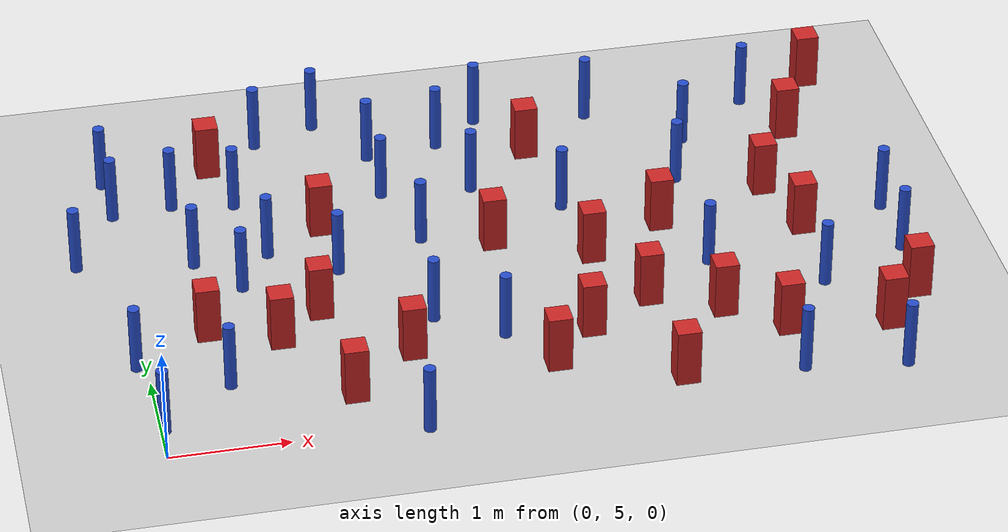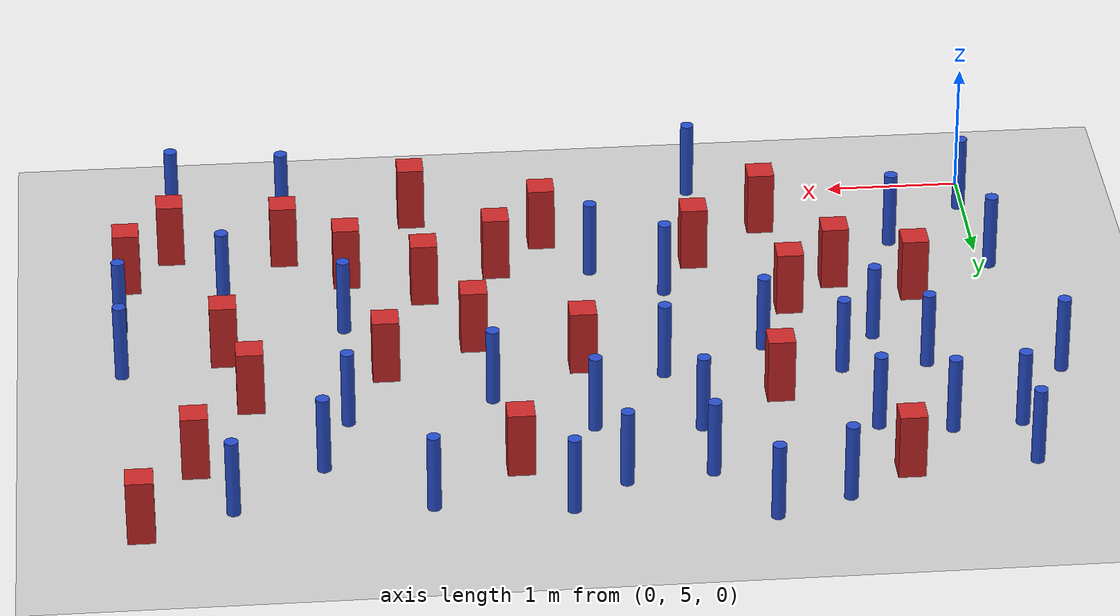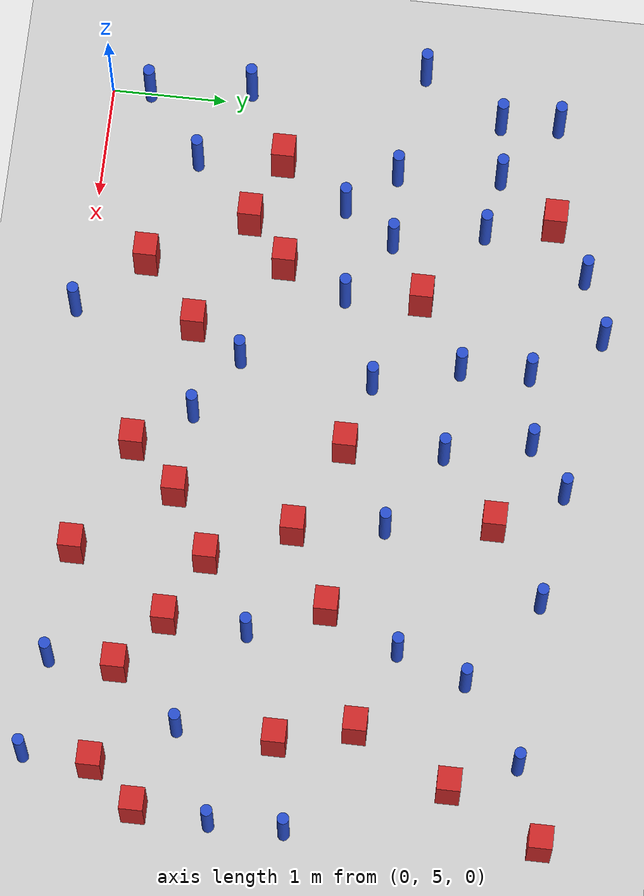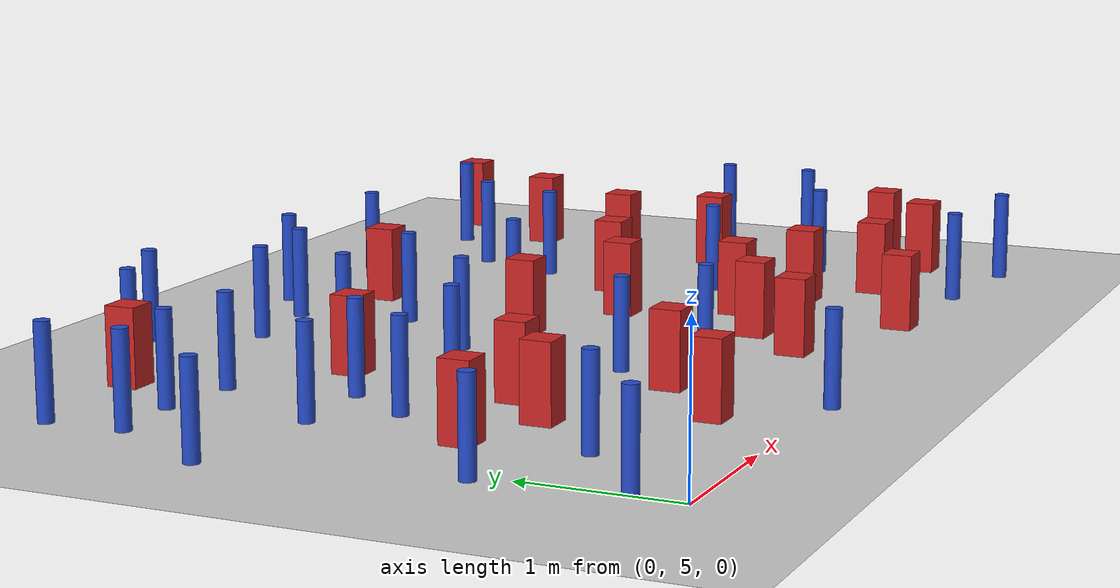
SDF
<sdf version="1.6">
 <world name="default">
  <model name="ground_plane">
   <static>1</static>
   <link name="link">
    <collision name="collision">
     <geometry><plane><normal>0 0 1</normal><size>100 100</size></plane></geometry>
     <surface><friction><ode><mu>100</mu><mu2>50</mu2></ode></friction></surface>
    </collision>
    <visual name="visual">
     <cast_shadows>0</cast_shadows>
     <geometry><plane><normal>0 0 1</normal><size>100 100</size></plane></geometry>
     <material>
      <ambient>1.0 1.0 1.0 1.0</ambient>
      <diffuse>0.8 0.8 0.8 1.0</diffuse>
      <specular>0.01 0.01 0.01 1.000000</specular>
     </material>
    </visual>
   </link>
  </model>
  <model name="pole_obstacle3">
   <static>true</static>
   <pose>5.07343041441 8.62092034777 2.88873142074e-08 -9.9053668967e-09 4.60219948993e-07 -1.20965994957e-07</pose>
   <link name="link">
    <pose>0 0 0.3 0 -0 0</pose>
    <inertial>
     <mass>1</mass>
     <inertia><ixx>0.145833</ixx><ixy>0</ixy><ixz>0</ixz><iyy>0.145833</iyy><iyz>0</iyz><izz>0.125</izz></inertia>
    </inertial>
    <collision name="collision">
     <geometry><cylinder><radius>0.05</radius><length>.6</length></cylinder></geometry>
    </collision>
    <visual name="visual">
     <geometry><cylinder><radius>0.05</radius><length>.6</length></cylinder></geometry>
     <material>
      <script><name>Gazebo/Blue</name><uri>file://media/materials/scripts/gazebo.material</uri></script>
     </material>
    </visual>
   </link>
  </model>
  <model name="square_post_obstacle4">
   <static>true</static>
   <pose>3.6613418634 6.00296689064 8.22691968438e-08 7.2212513382e-06 -7.54495500217e-07 2.29674213826e-05</pose>
   <link name="link">
    <pose>0 0 0.25 0 -0 0</pose>
    <inertial>
     <mass>100</mass>
     <inertia>
      <ixx>0.166667</ixx>
      <ixy>0</ixy>
      <ixz>0</ixz>
      <iyy>0.166667</iyy>
      <iyz>0</iyz>
      <izz>0.166667</izz>
     </inertia>
    </inertial>
    <collision name="collision"><geometry><box><size>.2 .2 .5</size></box></geometry></collision>
    <visual name="visual">
     <geometry><box><size>.2 .2 .5</size></box></geometry>
     <material>
      <script><name>Gazebo/Red</name><uri>file://media/materials/scripts/gazebo.material</uri></script>
     </material>
    </visual>
   </link>
  </model>
  <model name="pole_obstacle5">
   <static>true</static>
   <pose>-0.0787038739394 6.22609958677 2.88873142074e-08 -9.90536689804e-09 4.6021994899e-07 -1.2096599496e-07</pose>
   <link name="link">
    <pose>0 0 0.3 0 -0 0</pose>
    <inertial>
     <mass>1</mass>
     <inertia><ixx>0.145833</ixx><ixy>0</ixy><ixz>0</ixz><iyy>0.145833</iyy><iyz>0</iyz><izz>0.125</izz></inertia>
    </inertial>
    <collision name="collision">
     <geometry><cylinder><radius>0.05</radius><length>.6</length></cylinder></geometry>
    </collision>
    <visual name="visual">
     <geometry><cylinder><radius>0.05</radius><length>.6</length></cylinder></geometry>
     <material>
      <script><name>Gazebo/Blue</name><uri>file://media/materials/scripts/gazebo.material</uri></script>
     </material>
    </visual>
   </link>
  </model>
  <model name="square_post_obstacle8">
   <static>true</static>
   <pose>4.79156182953 6.05507499224 8.22691968438e-08 7.2212513382e-06 -7.54495500217e-07 2.29674213826e-05</pose>
   <link name="link">
    <pose>0 0 0.25 0 -0 0</pose>
    <inertial>
     <mass>100</mass>
     <inertia>
      <ixx>0.166667</ixx>
      <ixy>0</ixy>
      <ixz>0</ixz>
      <iyy>0.166667</iyy>
      <iyz>0</iyz>
      <izz>0.166667</izz>
     </inertia>
    </inertial>
    <collision name="collision"><geometry><box><size>.2 .2 .5</size></box></geometry></collision>
    <visual name="visual">
     <geometry><box><size>.2 .2 .5</size></box></geometry>
     <material>
      <script><name>Gazebo/Red</name><uri>file://media/materials/scripts/gazebo.material</uri></script>
     </material>
    </visual>
   </link>
  </model>
  <model name="pole_obstacle8">
   <static>true</static>
   <pose>0.0293933119848 5.34193619767 2.88873142074e-08 -9.90536689629e-09 4.60219948994e-07 -1.20965994958e-07</pose>
   <link name="link">
    <pose>0 0 0.3 0 -0 0</pose>
    <inertial>
     <mass>1</mass>
     <inertia><ixx>0.145833</ixx><ixy>0</ixy><ixz>0</ixz><iyy>0.145833</iyy><iyz>0</iyz><izz>0.125</izz></inertia>
    </inertial>
    <collision name="collision">
     <geometry><cylinder><radius>0.05</radius><length>.6</length></cylinder></geometry>
    </collision>
    <visual name="visual">
     <geometry><cylinder><radius>0.05</radius><length>.6</length></cylinder></geometry>
     <material>
      <script><name>Gazebo/Blue</name><uri>file://media/materials/scripts/gazebo.material</uri></script>
     </material>
    </visual>
   </link>
  </model>
  <model name="square_post_obstacle21">
   <static>true</static>
   <pose>3.28651102273 5.59727362077 8.22691968438e-08 7.2212513382e-06 -7.54495500217e-07 2.29674213826e-05</pose>
   <link name="link">
    <pose>0 0 0.25 0 -0 0</pose>
    <inertial>
     <mass>100</mass>
     <inertia>
      <ixx>0.166667</ixx>
      <ixy>0</ixy>
      <ixz>0</ixz>
      <iyy>0.166667</iyy>
      <iyz>0</iyz>
      <izz>0.166667</izz>
     </inertia>
    </inertial>
    <collision name="collision"><geometry><box><size>.2 .2 .5</size></box></geometry></collision>
    <visual name="visual">
     <geometry><box><size>.2 .2 .5</size></box></geometry>
     <material>
      <script><name>Gazebo/Red</name><uri>file://media/materials/scripts/gazebo.material</uri></script>
     </material>
    </visual>
   </link>
  </model>
  <model name="pole_obstacle13">
   <static>true</static>
   <pose>-0.38946082477 7.73032005938 2.88873142074e-08 -9.90536689683e-09 4.60219948993e-07 -1.20965994957e-07</pose>
   <link name="link">
    <pose>0 0 0.3 0 -0 0</pose>
    <inertial>
     <mass>1</mass>
     <inertia><ixx>0.145833</ixx><ixy>0</ixy><ixz>0</ixz><iyy>0.145833</iyy><iyz>0</iyz><izz>0.125</izz></inertia>
    </inertial>
    <collision name="collision">
     <geometry><cylinder><radius>0.05</radius><length>.6</length></cylinder></geometry>
    </collision>
    <visual name="visual">
     <geometry><cylinder><radius>0.05</radius><length>.6</length></cylinder></geometry>
     <material>
      <script><name>Gazebo/Blue</name><uri>file://media/materials/scripts/gazebo.material</uri></script>
     </material>
    </visual>
   </link>
  </model>
  <model name="pole_obstacle17">
   <static>true</static>
   <pose>2.93207302947 8.97610273955 2.88873142074e-08 -9.90536692318e-09 4.6021994893e-07 -1.20965994988e-07</pose>
   <link name="link">
    <pose>0 0 0.3 0 -0 0</pose>
    <inertial>
     <mass>1</mass>
     <inertia><ixx>0.145833</ixx><ixy>0</ixy><ixz>0</ixz><iyy>0.145833</iyy><iyz>0</iyz><izz>0.125</izz></inertia>
    </inertial>
    <collision name="collision">
     <geometry><cylinder><radius>0.05</radius><length>.6</length></cylinder></geometry>
    </collision>
    <visual name="visual">
     <geometry><cylinder><radius>0.05</radius><length>.6</length></cylinder></geometry>
     <material>
      <script><name>Gazebo/Blue</name><uri>file://media/materials/scripts/gazebo.material</uri></script>
     </material>
    </visual>
   </link>
  </model>
  <model name="pole_obstacle20">
   <static>true</static>
   <pose>2.32133269156 8.30454844125 2.88873142074e-08 -9.90536692318e-09 4.6021994893e-07 -1.20965994988e-07</pose>
   <link name="link">
    <pose>0 0 0.3 0 -0 0</pose>
    <inertial>
     <mass>1</mass>
     <inertia><ixx>0.145833</ixx><ixy>0</ixy><ixz>0</ixz><iyy>0.145833</iyy><iyz>0</iyz><izz>0.125</izz></inertia>
    </inertial>
    <collision name="collision">
     <geometry><cylinder><radius>0.05</radius><length>.6</length></cylinder></geometry>
    </collision>
    <visual name="visual">
     <geometry><cylinder><radius>0.05</radius><length>.6</length></cylinder></geometry>
     <material>
      <script><name>Gazebo/Blue</name><uri>file://media/materials/scripts/gazebo.material</uri></script>
     </material>
    </visual>
   </link>
  </model>
  <model name="pole_obstacle22">
   <static>true</static>
   <pose>4.31990303642 9.18147303217 2.88873142074e-08 -9.9053668967e-09 4.60219948993e-07 -1.20965994957e-07</pose>
   <link name="link">
    <pose>0 0 0.3 0 -0 0</pose>
    <inertial>
     <mass>1</mass>
     <inertia><ixx>0.145833</ixx><ixy>0</ixy><ixz>0</ixz><iyy>0.145833</iyy><iyz>0</iyz><izz>0.125</izz></inertia>
    </inertial>
    <collision name="collision">
     <geometry><cylinder><radius>0.05</radius><length>.6</length></cylinder></geometry>
    </collision>
    <visual name="visual">
     <geometry><cylinder><radius>0.05</radius><length>.6</length></cylinder></geometry>
     <material>
      <script><name>Gazebo/Blue</name><uri>file://media/materials/scripts/gazebo.material</uri></script>
     </material>
    </visual>
   </link>
  </model>
  <model name="pole_obstacle23">
   <static>true</static>
   <pose>0.634908028483 5.83418528549 2.88873142074e-08 -9.90536689661e-09 4.60219948993e-07 -1.20965994957e-07</pose>
   <link name="link">
    <pose>0 0 0.3 0 -0 0</pose>
    <inertial>
     <mass>1</mass>
     <inertia><ixx>0.145833</ixx><ixy>0</ixy><ixz>0</ixz><iyy>0.145833</iyy><iyz>0</iyz><izz>0.125</izz></inertia>
    </inertial>
    <collision name="collision">
     <geometry><cylinder><radius>0.05</radius><length>.6</length></cylinder></geometry>
    </collision>
    <visual name="visual">
     <geometry><cylinder><radius>0.05</radius><length>.6</length></cylinder></geometry>
     <material>
      <script><name>Gazebo/Blue</name><uri>file://media/materials/scripts/gazebo.material</uri></script>
     </material>
    </visual>
   </link>
  </model>
  <model name="pole_obstacle29">
   <static>true</static>
   <pose>2.95133486048 6.07044219101 2.88873142074e-08 -9.90536689859e-09 4.60219948989e-07 -1.20965994961e-07</pose>
   <link name="link">
    <pose>0 0 0.3 0 -0 0</pose>
    <inertial>
     <mass>1</mass>
     <inertia><ixx>0.145833</ixx><ixy>0</ixy><ixz>0</ixz><iyy>0.145833</iyy><iyz>0</iyz><izz>0.125</izz></inertia>
    </inertial>
    <collision name="collision">
     <geometry><cylinder><radius>0.05</radius><length>.6</length></cylinder></geometry>
    </collision>
    <visual name="visual">
     <geometry><cylinder><radius>0.05</radius><length>.6</length></cylinder></geometry>
     <material>
      <script><name>Gazebo/Blue</name><uri>file://media/materials/scripts/gazebo.material</uri></script>
     </material>
    </visual>
   </link>
  </model>
  <model name="pole_obstacle32">
   <static>true</static>
   <pose>6.07850207997 5.01633205296 2.88873142074e-08 -9.90536690842e-09 4.60219948965e-07 -1.20965994976e-07</pose>
   <link name="link">
    <pose>0 0 0.3 0 -0 0</pose>
    <inertial>
     <mass>1</mass>
     <inertia><ixx>0.145833</ixx><ixy>0</ixy><ixz>0</ixz><iyy>0.145833</iyy><iyz>0</iyz><izz>0.125</izz></inertia>
    </inertial>
    <collision name="collision">
     <geometry><cylinder><radius>0.05</radius><length>.6</length></cylinder></geometry>
    </collision>
    <visual name="visual">
     <geometry><cylinder><radius>0.05</radius><length>.6</length></cylinder></geometry>
     <material>
      <script><name>Gazebo/Blue</name><uri>file://media/materials/scripts/gazebo.material</uri></script>
     </material>
    </visual>
   </link>
  </model>
  <model name="pole_obstacle34">
   <static>true</static>
   <pose>0.520382870995 8.47928747682 2.88873142074e-08 -9.90536690924e-09 4.60219948963e-07 -1.20965994977e-07</pose>
   <link name="link">
    <pose>0 0 0.3 0 -0 0</pose>
    <inertial>
     <mass>1</mass>
     <inertia><ixx>0.145833</ixx><ixy>0</ixy><ixz>0</ixz><iyy>0.145833</iyy><iyz>0</iyz><izz>0.125</izz></inertia>
    </inertial>
    <collision name="collision">
     <geometry><cylinder><radius>0.05</radius><length>.6</length></cylinder></geometry>
    </collision>
    <visual name="visual">
     <geometry><cylinder><radius>0.05</radius><length>.6</length></cylinder></geometry>
     <material>
      <script><name>Gazebo/Blue</name><uri>file://media/materials/scripts/gazebo.material</uri></script>
     </material>
    </visual>
   </link>
  </model>
  <model name="pole_obstacle38">
   <static>true</static>
   <pose>1.36832359523 9.29233641756 2.88873142074e-08 -9.90536690474e-09 4.60219948974e-07 -1.2096599497e-07</pose>
   <link name="link">
    <pose>0 0 0.3 0 -0 0</pose>
    <inertial>
     <mass>1</mass>
     <inertia><ixx>0.145833</ixx><ixy>0</ixy><ixz>0</ixz><iyy>0.145833</iyy><iyz>0</iyz><izz>0.125</izz></inertia>
    </inertial>
    <collision name="collision">
     <geometry><cylinder><radius>0.05</radius><length>.6</length></cylinder></geometry>
    </collision>
    <visual name="visual">
     <geometry><cylinder><radius>0.05</radius><length>.6</length></cylinder></geometry>
     <material>
      <script><name>Gazebo/Blue</name><uri>file://media/materials/scripts/gazebo.material</uri></script>
     </material>
    </visual>
   </link>
  </model>
  <model name="pole_obstacle39">
   <static>true</static>
   <pose>4.87106118385 8.02638013836 2.88873142074e-08 -9.90536690354e-09 4.60219948977e-07 -1.20965994967e-07</pose>
   <link name="link">
    <pose>0 0 0.3 0 -0 0</pose>
    <inertial>
     <mass>1</mass>
     <inertia><ixx>0.145833</ixx><ixy>0</ixy><ixz>0</ixz><iyy>0.145833</iyy><iyz>0</iyz><izz>0.125</izz></inertia>
    </inertial>
    <collision name="collision">
     <geometry><cylinder><radius>0.05</radius><length>.6</length></cylinder></geometry>
    </collision>
    <visual name="visual">
     <geometry><cylinder><radius>0.05</radius><length>.6</length></cylinder></geometry>
     <material>
      <script><name>Gazebo/Blue</name><uri>file://media/materials/scripts/gazebo.material</uri></script>
     </material>
    </visual>
   </link>
  </model>
  <model name="pole_obstacle42">
   <static>true</static>
   <pose>4.84214449303 6.7519279477 2.88873142074e-08 -9.90536690842e-09 4.60219948965e-07 -1.20965994976e-07</pose>
   <link name="link">
    <pose>0 0 0.3 0 -0 0</pose>
    <inertial>
     <mass>1</mass>
     <inertia><ixx>0.145833</ixx><ixy>0</ixy><ixz>0</ixz><iyy>0.145833</iyy><iyz>0</iyz><izz>0.125</izz></inertia>
    </inertial>
    <collision name="collision">
     <geometry><cylinder><radius>0.05</radius><length>.6</length></cylinder></geometry>
    </collision>
    <visual name="visual">
     <geometry><cylinder><radius>0.05</radius><length>.6</length></cylinder></geometry>
     <material>
      <script><name>Gazebo/Blue</name><uri>file://media/materials/scripts/gazebo.material</uri></script>
     </material>
    </visual>
   </link>
  </model>
  <model name="square_post_obstacle42">
   <static>true</static>
   <pose>5.98952264554 8.56908962525 8.22691968438e-08 7.22125133819e-06 -7.54495500217e-07 2.29674213826e-05</pose>
   <link name="link">
    <pose>0 0 0.25 0 -0 0</pose>
    <inertial>
     <mass>100</mass>
     <inertia>
      <ixx>0.166667</ixx>
      <ixy>0</ixy>
      <ixz>0</ixz>
      <iyy>0.166667</iyy>
      <iyz>0</iyz>
      <izz>0.166667</izz>
     </inertia>
    </inertial>
    <collision name="collision"><geometry><box><size>.2 .2 .5</size></box></geometry></collision>
    <visual name="visual">
     <geometry><box><size>.2 .2 .5</size></box></geometry>
     <material>
      <script><name>Gazebo/Red</name><uri>file://media/materials/scripts/gazebo.material</uri></script>
     </material>
    </visual>
   </link>
  </model>
  <model name="square_post_obstacle44">
   <static>true</static>
   <pose>3.89634507235 7.03687972904 8.22691968438e-08 7.2212513382e-06 -7.54495500217e-07 2.29674213826e-05</pose>
   <link name="link">
    <pose>0 0 0.25 0 -0 0</pose>
    <inertial>
     <mass>100</mass>
     <inertia>
      <ixx>0.166667</ixx>
      <ixy>0</ixy>
      <ixz>0</ixz>
      <iyy>0.166667</iyy>
      <iyz>0</iyz>
      <izz>0.166667</izz>
     </inertia>
    </inertial>
    <collision name="collision"><geometry><box><size>.2 .2 .5</size></box></geometry></collision>
    <visual name="visual">
     <geometry><box><size>.2 .2 .5</size></box></geometry>
     <material>
      <script><name>Gazebo/Red</name><uri>file://media/materials/scripts/gazebo.material</uri></script>
     </material>
    </visual>
   </link>
  </model>
  <model name="square_post_obstacle56">
   <static>true</static>
   <pose>5.74303970381 7.09180597778 8.22691968438e-08 7.2212513382e-06 -7.54495500217e-07 2.29674213826e-05</pose>
   <link name="link">
    <pose>0 0 0.25 0 -0 0</pose>
    <inertial>
     <mass>100</mass>
     <inertia>
      <ixx>0.166667</ixx>
      <ixy>0</ixy>
      <ixz>0</ixz>
      <iyy>0.166667</iyy>
      <iyz>0</iyz>
      <izz>0.166667</izz>
     </inertia>
    </inertial>
    <collision name="collision"><geometry><box><size>.2 .2 .5</size></box></geometry></collision>
    <visual name="visual">
     <geometry><box><size>.2 .2 .5</size></box></geometry>
     <material>
      <script><name>Gazebo/Red</name><uri>file://media/materials/scripts/gazebo.material</uri></script>
     </material>
    </visual>
   </link>
  </model>
  <model name="square_post_obstacle57">
   <static>true</static>
   <pose>4.56621966003 7.39387506391 8.22691968438e-08 7.2212513382e-06 -7.54495500217e-07 2.29674213826e-05</pose>
   <link name="link">
    <pose>0 0 0.25 0 -0 0</pose>
    <inertial>
     <mass>100</mass>
     <inertia>
      <ixx>0.166667</ixx>
      <ixy>0</ixy>
      <ixz>0</ixz>
      <iyy>0.166667</iyy>
      <iyz>0</iyz>
      <izz>0.166667</izz>
     </inertia>
    </inertial>
    <collision name="collision"><geometry><box><size>.2 .2 .5</size></box></geometry></collision>
    <visual name="visual">
     <geometry><box><size>.2 .2 .5</size></box></geometry>
     <material>
      <script><name>Gazebo/Red</name><uri>file://media/materials/scripts/gazebo.material</uri></script>
     </material>
    </visual>
   </link>
  </model>
  <model name="square_post_obstacle58">
   <static>true</static>
   <pose>2.15884889556 5.98290241786 8.22691968438e-08 7.2212513382e-06 -7.54495500217e-07 2.29674213826e-05</pose>
   <link name="link">
    <pose>0 0 0.25 0 -0 0</pose>
    <inertial>
     <mass>100</mass>
     <inertia>
      <ixx>0.166667</ixx>
      <ixy>0</ixy>
      <ixz>0</ixz>
      <iyy>0.166667</iyy>
      <iyz>0</iyz>
      <izz>0.166667</izz>
     </inertia>
    </inertial>
    <collision name="collision"><geometry><box><size>.2 .2 .5</size></box></geometry></collision>
    <visual name="visual">
     <geometry><box><size>.2 .2 .5</size></box></geometry>
     <material>
      <script><name>Gazebo/Red</name><uri>file://media/materials/scripts/gazebo.material</uri></script>
     </material>
    </visual>
   </link>
  </model>
  <model name="pole_obstacle56">
   <static>true</static>
   <pose>6.49883200486 6.62302513416 2.88873142074e-08 -9.90536690842e-09 4.60219948965e-07 -1.20965994976e-07</pose>
   <link name="link">
    <pose>0 0 0.3 0 -0 0</pose>
    <inertial>
     <mass>1</mass>
     <inertia><ixx>0.145833</ixx><ixy>0</ixy><ixz>0</ixz><iyy>0.145833</iyy><iyz>0</iyz><izz>0.125</izz></inertia>
    </inertial>
    <collision name="collision">
     <geometry><cylinder><radius>0.05</radius><length>.6</length></cylinder></geometry>
    </collision>
    <visual name="visual">
     <geometry><cylinder><radius>0.05</radius><length>.6</length></cylinder></geometry>
     <material>
      <script><name>Gazebo/Blue</name><uri>file://media/materials/scripts/gazebo.material</uri></script>
     </material>
    </visual>
   </link>
  </model>
  <model name="pole_obstacle60">
   <static>true</static>
   <pose>5.73536031349 9.12586029871 2.88873142074e-08 -9.9053668967e-09 4.60219948993e-07 -1.20965994957e-07</pose>
   <link name="link">
    <pose>0 0 0.3 0 -0 0</pose>
    <inertial>
     <mass>1</mass>
     <inertia><ixx>0.145833</ixx><ixy>0</ixy><ixz>0</ixz><iyy>0.145833</iyy><iyz>0</iyz><izz>0.125</izz></inertia>
    </inertial>
    <collision name="collision">
     <geometry><cylinder><radius>0.05</radius><length>.6</length></cylinder></geometry>
    </collision>
    <visual name="visual">
     <geometry><cylinder><radius>0.05</radius><length>.6</length></cylinder></geometry>
     <material>
      <script><name>Gazebo/Blue</name><uri>file://media/materials/scripts/gazebo.material</uri></script>
     </material>
    </visual>
   </link>
  </model>
  <model name="square_post_obstacle63">
   <static>true</static>
   <pose>5.5682271392 7.74570875593 8.22691968438e-08 7.2212513382e-06 -7.54495500217e-07 2.29674213826e-05</pose>
   <link name="link">
    <pose>0 0 0.25 0 -0 0</pose>
    <inertial>
     <mass>100</mass>
     <inertia>
      <ixx>0.166667</ixx>
      <ixy>0</ixy>
      <ixz>0</ixz>
      <iyy>0.166667</iyy>
      <iyz>0</iyz>
      <izz>0.166667</izz>
     </inertia>
    </inertial>
    <collision name="collision"><geometry><box><size>.2 .2 .5</size></box></geometry></collision>
    <visual name="visual">
     <geometry><box><size>.2 .2 .5</size></box></geometry>
     <material>
      <script><name>Gazebo/Red</name><uri>file://media/materials/scripts/gazebo.material</uri></script>
     </material>
    </visual>
   </link>
  </model>
  <model name="pole_obstacle74">
   <static>true</static>
   <pose>0.585891063703 7.58184577881 2.88873142074e-08 -9.90536689661e-09 4.60219948993e-07 -1.20965994957e-07</pose>
   <link name="link">
    <pose>0 0 0.3 0 -0 0</pose>
    <inertial>
     <mass>1</mass>
     <inertia><ixx>0.145833</ixx><ixy>0</ixy><ixz>0</ixz><iyy>0.145833</iyy><iyz>0</iyz><izz>0.125</izz></inertia>
    </inertial>
    <collision name="collision">
     <geometry><cylinder><radius>0.05</radius><length>.6</length></cylinder></geometry>
    </collision>
    <visual name="visual">
     <geometry><cylinder><radius>0.05</radius><length>.6</length></cylinder></geometry>
     <material>
      <script><name>Gazebo/Blue</name><uri>file://media/materials/scripts/gazebo.material</uri></script>
     </material>
    </visual>
   </link>
  </model>
  <model name="pole_obstacle77">
   <static>true</static>
   <pose>2.09979697972 4.94547751363 2.88873142074e-08 -9.90536689859e-09 4.60219948989e-07 -1.20965994961e-07</pose>
   <link name="link">
    <pose>0 0 0.3 0 -0 0</pose>
    <inertial>
     <mass>1</mass>
     <inertia><ixx>0.145833</ixx><ixy>0</ixy><ixz>0</ixz><iyy>0.145833</iyy><iyz>0</iyz><izz>0.125</izz></inertia>
    </inertial>
    <collision name="collision">
     <geometry><cylinder><radius>0.05</radius><length>.6</length></cylinder></geometry>
    </collision>
    <visual name="visual">
     <geometry><cylinder><radius>0.05</radius><length>.6</length></cylinder></geometry>
     <material>
      <script><name>Gazebo/Blue</name><uri>file://media/materials/scripts/gazebo.material</uri></script>
     </material>
    </visual>
   </link>
  </model>
  <model name="pole_obstacle79">
   <static>true</static>
   <pose>2.30462930863 8.90304414215 2.88873142074e-08 -9.90536692318e-09 4.6021994893e-07 -1.20965994988e-07</pose>
   <link name="link">
    <pose>0 0 0.3 0 -0 0</pose>
    <inertial>
     <mass>1</mass>
     <inertia><ixx>0.145833</ixx><ixy>0</ixy><ixz>0</ixz><iyy>0.145833</iyy><iyz>0</iyz><izz>0.125</izz></inertia>
    </inertial>
    <collision name="collision">
     <geometry><cylinder><radius>0.05</radius><length>.6</length></cylinder></geometry>
    </collision>
    <visual name="visual">
     <geometry><cylinder><radius>0.05</radius><length>.6</length></cylinder></geometry>
     <material>
      <script><name>Gazebo/Blue</name><uri>file://media/materials/scripts/gazebo.material</uri></script>
     </material>
    </visual>
   </link>
  </model>
  <model name="square_post_obstacle80">
   <static>true</static>
   <pose>4.22255335661 6.3365007623 8.22691968438e-08 7.2212513382e-06 -7.54495500217e-07 2.29674213826e-05</pose>
   <link name="link">
    <pose>0 0 0.25 0 -0 0</pose>
    <inertial>
     <mass>100</mass>
     <inertia>
      <ixx>0.166667</ixx>
      <ixy>0</ixy>
      <ixz>0</ixz>
      <iyy>0.166667</iyy>
      <iyz>0</iyz>
      <izz>0.166667</izz>
     </inertia>
    </inertial>
    <collision name="collision"><geometry><box><size>.2 .2 .5</size></box></geometry></collision>
    <visual name="visual">
     <geometry><box><size>.2 .2 .5</size></box></geometry>
     <material>
      <script><name>Gazebo/Red</name><uri>file://media/materials/scripts/gazebo.material</uri></script>
     </material>
    </visual>
   </link>
  </model>
  <model name="pole_obstacle94">
   <static>true</static>
   <pose>-0.0243329330218 8.93579561472 2.88873142074e-08 -9.90536690815e-09 4.60219948966e-07 -1.20965994976e-07</pose>
   <link name="link">
    <pose>0 0 0.3 0 -0 0</pose>
    <inertial>
     <mass>1</mass>
     <inertia><ixx>0.145833</ixx><ixy>0</ixy><ixz>0</ixz><iyy>0.145833</iyy><iyz>0</iyz><izz>0.125</izz></inertia>
    </inertial>
    <collision name="collision">
     <geometry><cylinder><radius>0.05</radius><length>.6</length></cylinder></geometry>
    </collision>
    <visual name="visual">
     <geometry><cylinder><radius>0.05</radius><length>.6</length></cylinder></geometry>
     <material>
      <script><name>Gazebo/Blue</name><uri>file://media/materials/scripts/gazebo.material</uri></script>
     </material>
    </visual>
   </link>
  </model>
  <model name="square_post_obstacle83">
   <static>true</static>
   <pose>6.10295690196 5.60071645551 8.22691968438e-08 7.2212513382e-06 -7.54495500217e-07 2.29674213826e-05</pose>
   <link name="link">
    <pose>0 0 0.25 0 -0 0</pose>
    <inertial>
     <mass>100</mass>
     <inertia>
      <ixx>0.166667</ixx>
      <ixy>0</ixy>
      <ixz>0</ixz>
      <iyy>0.166667</iyy>
      <iyz>0</iyz>
      <izz>0.166667</izz>
     </inertia>
    </inertial>
    <collision name="collision"><geometry><box><size>.2 .2 .5</size></box></geometry></collision>
    <visual name="visual">
     <geometry><box><size>.2 .2 .5</size></box></geometry>
     <material>
      <script><name>Gazebo/Red</name><uri>file://media/materials/scripts/gazebo.material</uri></script>
     </material>
    </visual>
   </link>
  </model>
  <model name="pole_obstacle99">
   <static>true</static>
   <pose>3.09824916941 8.24033254795 2.88873142074e-08 -9.90536692318e-09 4.6021994893e-07 -1.20965994988e-07</pose>
   <link name="link">
    <pose>0 0 0.3 0 -0 0</pose>
    <inertial>
     <mass>1</mass>
     <inertia><ixx>0.145833</ixx><ixy>0</ixy><ixz>0</ixz><iyy>0.145833</iyy><iyz>0</iyz><izz>0.125</izz></inertia>
    </inertial>
    <collision name="collision">
     <geometry><cylinder><radius>0.05</radius><length>.6</length></cylinder></geometry>
    </collision>
    <visual name="visual">
     <geometry><cylinder><radius>0.05</radius><length>.6</length></cylinder></geometry>
     <material>
      <script><name>Gazebo/Blue</name><uri>file://media/materials/scripts/gazebo.material</uri></script>
     </material>
    </visual>
   </link>
  </model>
  <model name="pole_obstacle100">
   <static>true</static>
   <pose>2.53014920887 7.56554582242 2.88873142074e-08 -9.90536689859e-09 4.60219948989e-07 -1.20965994961e-07</pose>
   <link name="link">
    <pose>0 0 0.3 0 -0 0</pose>
    <inertial>
     <mass>1</mass>
     <inertia><ixx>0.145833</ixx><ixy>0</ixy><ixz>0</ixz><iyy>0.145833</iyy><iyz>0</iyz><izz>0.125</izz></inertia>
    </inertial>
    <collision name="collision">
     <geometry><cylinder><radius>0.05</radius><length>.6</length></cylinder></geometry>
    </collision>
    <visual name="visual">
     <geometry><cylinder><radius>0.05</radius><length>.6</length></cylinder></geometry>
     <material>
      <script><name>Gazebo/Blue</name><uri>file://media/materials/scripts/gazebo.material</uri></script>
     </material>
    </visual>
   </link>
  </model>
  <model name="square_post_obstacle88">
   <static>true</static>
   <pose>3.11747660778 7.39302476717 8.22691968438e-08 7.2212513382e-06 -7.54495500217e-07 2.29674213826e-05</pose>
   <link name="link">
    <pose>0 0 0.25 0 -0 0</pose>
    <inertial>
     <mass>100</mass>
     <inertia>
      <ixx>0.166667</ixx>
      <ixy>0</ixy>
      <ixz>0</ixz>
      <iyy>0.166667</iyy>
      <iyz>0</iyz>
      <izz>0.166667</izz>
     </inertia>
    </inertial>
    <collision name="collision"><geometry><box><size>.2 .2 .5</size></box></geometry></collision>
    <visual name="visual">
     <geometry><box><size>.2 .2 .5</size></box></geometry>
     <material>
      <script><name>Gazebo/Red</name><uri>file://media/materials/scripts/gazebo.material</uri></script>
     </material>
    </visual>
   </link>
  </model>
  <model name="square_post_obstacle95">
   <static>true</static>
   <pose>0.556801093401 6.57851596437 8.22691968438e-08 7.2212513382e-06 -7.54495500217e-07 2.29674213826e-05</pose>
   <link name="link">
    <pose>0 0 0.25 0 -0 0</pose>
    <inertial>
     <mass>100</mass>
     <inertia>
      <ixx>0.166667</ixx>
      <ixy>0</ixy>
      <ixz>0</ixz>
      <iyy>0.166667</iyy>
      <iyz>0</iyz>
      <izz>0.166667</izz>
     </inertia>
    </inertial>
    <collision name="collision"><geometry><box><size>.2 .2 .5</size></box></geometry></collision>
    <visual name="visual">
     <geometry><box><size>.2 .2 .5</size></box></geometry>
     <material>
      <script><name>Gazebo/Red</name><uri>file://media/materials/scripts/gazebo.material</uri></script>
     </material>
    </visual>
   </link>
  </model>
  <model name="pole_obstacle109">
   <static>true</static>
   <pose>3.33571154156 9.29321097163 2.88873142074e-08 -9.90536692318e-09 4.6021994893e-07 -1.20965994988e-07</pose>
   <link name="link">
    <pose>0 0 0.3 0 -0 0</pose>
    <inertial>
     <mass>1</mass>
     <inertia><ixx>0.145833</ixx><ixy>0</ixy><ixz>0</ixz><iyy>0.145833</iyy><iyz>0</iyz><izz>0.125</izz></inertia>
    </inertial>
    <collision name="collision">
     <geometry><cylinder><radius>0.05</radius><length>.6</length></cylinder></geometry>
    </collision>
    <visual name="visual">
     <geometry><cylinder><radius>0.05</radius><length>.6</length></cylinder></geometry>
     <material>
      <script><name>Gazebo/Blue</name><uri>file://media/materials/scripts/gazebo.material</uri></script>
     </material>
    </visual>
   </link>
  </model>
  <model name="pole_obstacle117">
   <static>true</static>
   <pose>0.934718548329 7.16276875569 2.88873142074e-08 -9.90536689661e-09 4.60219948993e-07 -1.20965994957e-07</pose>
   <link name="link">
    <pose>0 0 0.3 0 -0 0</pose>
    <inertial>
     <mass>1</mass>
     <inertia><ixx>0.145833</ixx><ixy>0</ixy><ixz>0</ixz><iyy>0.145833</iyy><iyz>0</iyz><izz>0.125</izz></inertia>
    </inertial>
    <collision name="collision">
     <geometry><cylinder><radius>0.05</radius><length>.6</length></cylinder></geometry>
    </collision>
    <visual name="visual">
     <geometry><cylinder><radius>0.05</radius><length>.6</length></cylinder></geometry>
     <material>
      <script><name>Gazebo/Blue</name><uri>file://media/materials/scripts/gazebo.material</uri></script>
     </material>
    </visual>
   </link>
  </model>
  <model name="pole_obstacle118">
   <static>true</static>
   <pose>0.00551844705792 8.43111414945 2.88873142074e-08 -9.90536690771e-09 4.60219948967e-07 -1.20965994976e-07</pose>
   <link name="link">
    <pose>0 0 0.3 0 -0 0</pose>
    <inertial>
     <mass>1</mass>
     <inertia><ixx>0.145833</ixx><ixy>0</ixy><ixz>0</ixz><iyy>0.145833</iyy><iyz>0</iyz><izz>0.125</izz></inertia>
    </inertial>
    <collision name="collision">
     <geometry><cylinder><radius>0.05</radius><length>.6</length></cylinder></geometry>
    </collision>
    <visual name="visual">
     <geometry><cylinder><radius>0.05</radius><length>.6</length></cylinder></geometry>
     <material>
      <script><name>Gazebo/Blue</name><uri>file://media/materials/scripts/gazebo.material</uri></script>
     </material>
    </visual>
   </link>
  </model>
  <model name="square_post_obstacle105">
   <static>true</static>
   <pose>3.67332925518 8.7221953638 8.22691968438e-08 7.22125133819e-06 -7.54495500217e-07 2.29674213826e-05</pose>
   <link name="link">
    <pose>0 0 0.25 0 -0 0</pose>
    <inertial>
     <mass>100</mass>
     <inertia>
      <ixx>0.166667</ixx>
      <ixy>0</ixy>
      <ixz>0</ixz>
      <iyy>0.166667</iyy>
      <iyz>0</iyz>
      <izz>0.166667</izz>
     </inertia>
    </inertial>
    <collision name="collision"><geometry><box><size>.2 .2 .5</size></box></geometry></collision>
    <visual name="visual">
     <geometry><box><size>.2 .2 .5</size></box></geometry>
     <material>
      <script><name>Gazebo/Red</name><uri>file://media/materials/scripts/gazebo.material</uri></script>
     </material>
    </visual>
   </link>
  </model>
  <model name="square_post_obstacle112">
   <static>true</static>
   <pose>1.59796516346 5.50462396227 8.22691968438e-08 7.2212513382e-06 -7.54495500217e-07 2.29674213826e-05</pose>
   <link name="link">
    <pose>0 0 0.25 0 -0 0</pose>
    <inertial>
     <mass>100</mass>
     <inertia>
      <ixx>0.166667</ixx>
      <ixy>0</ixy>
      <ixz>0</ixz>
      <iyy>0.166667</iyy>
      <iyz>0</iyz>
      <izz>0.166667</izz>
     </inertia>
    </inertial>
    <collision name="collision"><geometry><box><size>.2 .2 .5</size></box></geometry></collision>
    <visual name="visual">
     <geometry><box><size>.2 .2 .5</size></box></geometry>
     <material>
      <script><name>Gazebo/Red</name><uri>file://media/materials/scripts/gazebo.material</uri></script>
     </material>
    </visual>
   </link>
  </model>
  <model name="pole_obstacle130">
   <static>true</static>
   <pose>5.72422768133 6.26461935013 2.88873142074e-08 -9.90536690842e-09 4.60219948965e-07 -1.20965994976e-07</pose>
   <link name="link">
    <pose>0 0 0.3 0 -0 0</pose>
    <inertial>
     <mass>1</mass>
     <inertia><ixx>0.145833</ixx><ixy>0</ixy><ixz>0</ixz><iyy>0.145833</iyy><iyz>0</iyz><izz>0.125</izz></inertia>
    </inertial>
    <collision name="collision">
     <geometry><cylinder><radius>0.05</radius><length>.6</length></cylinder></geometry>
    </collision>
    <visual name="visual">
     <geometry><cylinder><radius>0.05</radius><length>.6</length></cylinder></geometry>
     <material>
      <script><name>Gazebo/Blue</name><uri>file://media/materials/scripts/gazebo.material</uri></script>
     </material>
    </visual>
   </link>
  </model>
  <model name="pole_obstacle135">
   <static>true</static>
   <pose>1.0487019994 8.39224421462 2.88873142074e-08 -9.90536690572e-09 4.60219948972e-07 -1.20965994971e-07</pose>
   <link name="link">
    <pose>0 0 0.3 0 -0 0</pose>
    <inertial>
     <mass>1</mass>
     <inertia><ixx>0.145833</ixx><ixy>0</ixy><ixz>0</ixz><iyy>0.145833</iyy><iyz>0</iyz><izz>0.125</izz></inertia>
    </inertial>
    <collision name="collision">
     <geometry><cylinder><radius>0.05</radius><length>.6</length></cylinder></geometry>
    </collision>
    <visual name="visual">
     <geometry><cylinder><radius>0.05</radius><length>.6</length></cylinder></geometry>
     <material>
      <script><name>Gazebo/Blue</name><uri>file://media/materials/scripts/gazebo.material</uri></script>
     </material>
    </visual>
   </link>
  </model>
  <model name="pole_obstacle138">
   <static>true</static>
   <pose>5.23972996881 5.12302242934 2.88873142074e-08 -9.90536690842e-09 4.60219948965e-07 -1.20965994976e-07</pose>
   <link name="link">
    <pose>0 0 0.3 0 -0 0</pose>
    <inertial>
     <mass>1</mass>
     <inertia><ixx>0.145833</ixx><ixy>0</ixy><ixz>0</ixz><iyy>0.145833</iyy><iyz>0</iyz><izz>0.125</izz></inertia>
    </inertial>
    <collision name="collision">
     <geometry><cylinder><radius>0.05</radius><length>.6</length></cylinder></geometry>
    </collision>
    <visual name="visual">
     <geometry><cylinder><radius>0.05</radius><length>.6</length></cylinder></geometry>
     <material>
      <script><name>Gazebo/Blue</name><uri>file://media/materials/scripts/gazebo.material</uri></script>
     </material>
    </visual>
   </link>
  </model>
  <model name="square_post_obstacle122">
   <static>true</static>
   <pose>5.2506309324 5.6943923892 8.22691968438e-08 7.2212513382e-06 -7.54495500217e-07 2.29674213826e-05</pose>
   <link name="link">
    <pose>0 0 0.25 0 -0 0</pose>
    <inertial>
     <mass>100</mass>
     <inertia>
      <ixx>0.166667</ixx>
      <ixy>0</ixy>
      <ixz>0</ixz>
      <iyy>0.166667</iyy>
      <iyz>0</iyz>
      <izz>0.166667</izz>
     </inertia>
    </inertial>
    <collision name="collision"><geometry><box><size>.2 .2 .5</size></box></geometry></collision>
    <visual name="visual">
     <geometry><box><size>.2 .2 .5</size></box></geometry>
     <material>
      <script><name>Gazebo/Red</name><uri>file://media/materials/scripts/gazebo.material</uri></script>
     </material>
    </visual>
   </link>
  </model>
  <model name="square_post_obstacle125">
   <static>true</static>
   <pose>4.25775876453 5.2035304875 8.22691968438e-08 7.2212513382e-06 -7.54495500217e-07 2.29674213826e-05</pose>
   <link name="link">
    <pose>0 0 0.25 0 -0 0</pose>
    <inertial>
     <mass>100</mass>
     <inertia>
      <ixx>0.166667</ixx>
      <ixy>0</ixy>
      <ixz>0</ixz>
      <iyy>0.166667</iyy>
      <iyz>0</iyz>
      <izz>0.166667</izz>
     </inertia>
    </inertial>
    <collision name="collision"><geometry><box><size>.2 .2 .5</size></box></geometry></collision>
    <visual name="visual">
     <geometry><box><size>.2 .2 .5</size></box></geometry>
     <material>
      <script><name>Gazebo/Red</name><uri>file://media/materials/scripts/gazebo.material</uri></script>
     </material>
    </visual>
   </link>
  </model>
  <model name="pole_obstacle150">
   <static>true</static>
   <pose>1.9120649309 9.49385869127 2.88873142074e-08 -9.90536690474e-09 4.60219948974e-07 -1.2096599497e-07</pose>
   <link name="link">
    <pose>0 0 0.3 0 -0 0</pose>
    <inertial>
     <mass>1</mass>
     <inertia><ixx>0.145833</ixx><ixy>0</ixy><ixz>0</ixz><iyy>0.145833</iyy><iyz>0</iyz><izz>0.125</izz></inertia>
    </inertial>
    <collision name="collision">
     <geometry><cylinder><radius>0.05</radius><length>.6</length></cylinder></geometry>
    </collision>
    <visual name="visual">
     <geometry><cylinder><radius>0.05</radius><length>.6</length></cylinder></geometry>
     <material>
      <script><name>Gazebo/Blue</name><uri>file://media/materials/scripts/gazebo.material</uri></script>
     </material>
    </visual>
   </link>
  </model>
  <model name="square_post_obstacle144">
   <static>true</static>
   <pose>0.901771365264 8.98083061328 8.22691968438e-08 7.22125133819e-06 -7.54495500217e-07 2.29674213826e-05</pose>
   <link name="link">
    <pose>0 0 0.25 0 -0 0</pose>
    <inertial>
     <mass>100</mass>
     <inertia>
      <ixx>0.166667</ixx>
      <ixy>0</ixy>
      <ixz>0</ixz>
      <iyy>0.166667</iyy>
      <iyz>0</iyz>
      <izz>0.166667</izz>
     </inertia>
    </inertial>
    <collision name="collision"><geometry><box><size>.2 .2 .5</size></box></geometry></collision>
    <visual name="visual">
     <geometry><box><size>.2 .2 .5</size></box></geometry>
     <material>
      <script><name>Gazebo/Red</name><uri>file://media/materials/scripts/gazebo.material</uri></script>
     </material>
    </visual>
   </link>
  </model>
  <model name="pole_obstacle157">
   <static>true</static>
   <pose>1.76430870897 7.24803929903 2.88873142074e-08 -9.90536689852e-09 4.60219948989e-07 -1.2096599496e-07</pose>
   <link name="link">
    <pose>0 0 0.3 0 -0 0</pose>
    <inertial>
     <mass>1</mass>
     <inertia><ixx>0.145833</ixx><ixy>0</ixy><ixz>0</ixz><iyy>0.145833</iyy><iyz>0</iyz><izz>0.125</izz></inertia>
    </inertial>
    <collision name="collision">
     <geometry><cylinder><radius>0.05</radius><length>.6</length></cylinder></geometry>
    </collision>
    <visual name="visual">
     <geometry><cylinder><radius>0.05</radius><length>.6</length></cylinder></geometry>
     <material>
      <script><name>Gazebo/Blue</name><uri>file://media/materials/scripts/gazebo.material</uri></script>
     </material>
    </visual>
   </link>
  </model>
  <model name="square_post_obstacle155">
   <static>true</static>
   <pose>1.51160375265 6.69389159963 8.22691968438e-08 7.2212513382e-06 -7.54495500217e-07 2.29674213826e-05</pose>
   <link name="link">
    <pose>0 0 0.25 0 -0 0</pose>
    <inertial>
     <mass>100</mass>
     <inertia>
      <ixx>0.166667</ixx>
      <ixy>0</ixy>
      <ixz>0</ixz>
      <iyy>0.166667</iyy>
      <iyz>0</iyz>
      <izz>0.166667</izz>
     </inertia>
    </inertial>
    <collision name="collision"><geometry><box><size>.2 .2 .5</size></box></geometry></collision>
    <visual name="visual">
     <geometry><box><size>.2 .2 .5</size></box></geometry>
     <material>
      <script><name>Gazebo/Red</name><uri>file://media/materials/scripts/gazebo.material</uri></script>
     </material>
    </visual>
   </link>
  </model>
  <model name="pole_obstacle164">
   <static>true</static>
   <pose>2.41737703175 6.41480684168 2.88873142074e-08 -9.90536689859e-09 4.60219948989e-07 -1.20965994961e-07</pose>
   <link name="link">
    <pose>0 0 0.3 0 -0 0</pose>
    <inertial>
     <mass>1</mass>
     <inertia><ixx>0.145833</ixx><ixy>0</ixy><ixz>0</ixz><iyy>0.145833</iyy><iyz>0</iyz><izz>0.125</izz></inertia>
    </inertial>
    <collision name="collision">
     <geometry><cylinder><radius>0.05</radius><length>.6</length></cylinder></geometry>
    </collision>
    <visual name="visual">
     <geometry><cylinder><radius>0.05</radius><length>.6</length></cylinder></geometry>
     <material>
      <script><name>Gazebo/Blue</name><uri>file://media/materials/scripts/gazebo.material</uri></script>
     </material>
    </visual>
   </link>
  </model>
  <model name="pole_obstacle180">
   <static>true</static>
   <pose>1.21738322385 7.60529634253 2.88873142074e-08 -9.90536689852e-09 4.60219948989e-07 -1.2096599496e-07</pose>
   <link name="link">
    <pose>0 0 0.3 0 -0 0</pose>
    <inertial>
     <mass>1</mass>
     <inertia><ixx>0.145833</ixx><ixy>0</ixy><ixz>0</ixz><iyy>0.145833</iyy><iyz>0</iyz><izz>0.125</izz></inertia>
    </inertial>
    <collision name="collision">
     <geometry><cylinder><radius>0.05</radius><length>.6</length></cylinder></geometry>
    </collision>
    <visual name="visual">
     <geometry><cylinder><radius>0.05</radius><length>.6</length></cylinder></geometry>
     <material>
      <script><name>Gazebo/Blue</name><uri>file://media/materials/scripts/gazebo.material</uri></script>
     </material>
    </visual>
   </link>
  </model>
  <model name="pole_obstacle182">
   <static>true</static>
   <pose>6.49731651599 7.252663737 2.88873142074e-08 -9.90536690842e-09 4.60219948965e-07 -1.20965994976e-07</pose>
   <link name="link">
    <pose>0 0 0.3 0 -0 0</pose>
    <inertial>
     <mass>1</mass>
     <inertia><ixx>0.145833</ixx><ixy>0</ixy><ixz>0</ixz><iyy>0.145833</iyy><iyz>0</iyz><izz>0.125</izz></inertia>
    </inertial>
    <collision name="collision">
     <geometry><cylinder><radius>0.05</radius><length>.6</length></cylinder></geometry>
    </collision>
    <visual name="visual">
     <geometry><cylinder><radius>0.05</radius><length>.6</length></cylinder></geometry>
     <material>
      <script><name>Gazebo/Blue</name><uri>file://media/materials/scripts/gazebo.material</uri></script>
     </material>
    </visual>
   </link>
  </model>
  <model name="square_post_obstacle171">
   <static>true</static>
   <pose>1.71587505069 7.90292228491 8.22691968438e-08 7.22125133819e-06 -7.54495500217e-07 2.29674213826e-05</pose>
   <link name="link">
    <pose>0 0 0.25 0 -0 0</pose>
    <inertial>
     <mass>100</mass>
     <inertia>
      <ixx>0.166667</ixx>
      <ixy>0</ixy>
      <ixz>0</ixz>
      <iyy>0.166667</iyy>
      <iyz>0</iyz>
      <izz>0.166667</izz>
     </inertia>
    </inertial>
    <collision name="collision"><geometry><box><size>.2 .2 .5</size></box></geometry></collision>
    <visual name="visual">
     <geometry><box><size>.2 .2 .5</size></box></geometry>
     <material>
      <script><name>Gazebo/Red</name><uri>file://media/materials/scripts/gazebo.material</uri></script>
     </material>
    </visual>
   </link>
  </model>
  <model name="pole_obstacle187">
   <static>true</static>
   <pose>3.80674011304 7.80956683989 2.88873142074e-08 -9.90536689859e-09 4.60219948989e-07 -1.20965994961e-07</pose>
   <link name="link">
    <pose>0 0 0.3 0 -0 0</pose>
    <inertial>
     <mass>1</mass>
     <inertia><ixx>0.145833</ixx><ixy>0</ixy><ixz>0</ixz><iyy>0.145833</iyy><iyz>0</iyz><izz>0.125</izz></inertia>
    </inertial>
    <collision name="collision">
     <geometry><cylinder><radius>0.05</radius><length>.6</length></cylinder></geometry>
    </collision>
    <visual name="visual">
     <geometry><cylinder><radius>0.05</radius><length>.6</length></cylinder></geometry>
     <material>
      <script><name>Gazebo/Blue</name><uri>file://media/materials/scripts/gazebo.material</uri></script>
     </material>
    </visual>
   </link>
  </model>
  <model name="square_post_obstacle198">
   <static>true</static>
   <pose>6.38911648969 9.36289536479 8.22691968438e-08 7.22125133819e-06 -7.54495500217e-07 2.29674213826e-05</pose>
   <link name="link">
    <pose>0 0 0.25 0 -0 0</pose>
    <inertial>
     <mass>100</mass>
     <inertia>
      <ixx>0.166667</ixx>
      <ixy>0</ixy>
      <ixz>0</ixz>
      <iyy>0.166667</iyy>
      <iyz>0</iyz>
      <izz>0.166667</izz>
     </inertia>
    </inertial>
    <collision name="collision"><geometry><box><size>.2 .2 .5</size></box></geometry></collision>
    <visual name="visual">
     <geometry><box><size>.2 .2 .5</size></box></geometry>
     <material>
      <script><name>Gazebo/Red</name><uri>file://media/materials/scripts/gazebo.material</uri></script>
     </material>
    </visual>
   </link>
  </model>
  <model name="square_post_obstacle224">
   <static>true</static>
   <pose>1.13271551095 6.35329331209 8.22691968438e-08 7.2212513382e-06 -7.54495500217e-07 2.29674213826e-05</pose>
   <link name="link">
    <pose>0 0 0.25 0 -0 0</pose>
    <inertial>
     <mass>100</mass>
     <inertia>
      <ixx>0.166667</ixx>
      <ixy>0</ixy>
      <ixz>0</ixz>
      <iyy>0.166667</iyy>
      <iyz>0</iyz>
      <izz>0.166667</izz>
     </inertia>
    </inertial>
    <collision name="collision"><geometry><box><size>.2 .2 .5</size></box></geometry></collision>
    <visual name="visual">
     <geometry><box><size>.2 .2 .5</size></box></geometry>
     <material>
      <script><name>Gazebo/Red</name><uri>file://media/materials/scripts/gazebo.material</uri></script>
     </material>
    </visual>
   </link>
  </model>
  <model name="square_post_obstacle235">
   <static>true</static>
   <pose>6.44003646985 5.9982681206 8.22691968438e-08 7.2212513382e-06 -7.54495500217e-07 2.29674213826e-05</pose>
   <link name="link">
    <pose>0 0 0.25 0 -0 0</pose>
    <inertial>
     <mass>100</mass>
     <inertia>
      <ixx>0.166667</ixx>
      <ixy>0</ixy>
      <ixz>0</ixz>
      <iyy>0.166667</iyy>
      <iyz>0</iyz>
      <izz>0.166667</izz>
     </inertia>
    </inertial>
    <collision name="collision"><geometry><box><size>.2 .2 .5</size></box></geometry></collision>
    <visual name="visual">
     <geometry><box><size>.2 .2 .5</size></box></geometry>
     <material>
      <script><name>Gazebo/Red</name><uri>file://media/materials/scripts/gazebo.material</uri></script>
     </material>
    </visual>
   </link>
  </model>
 </world>
</sdf>
